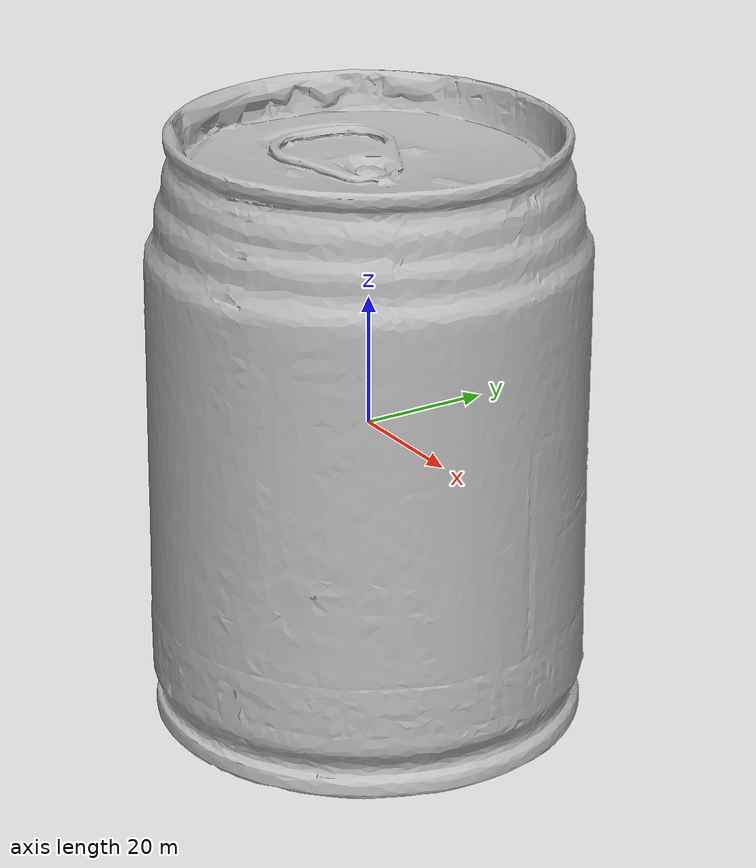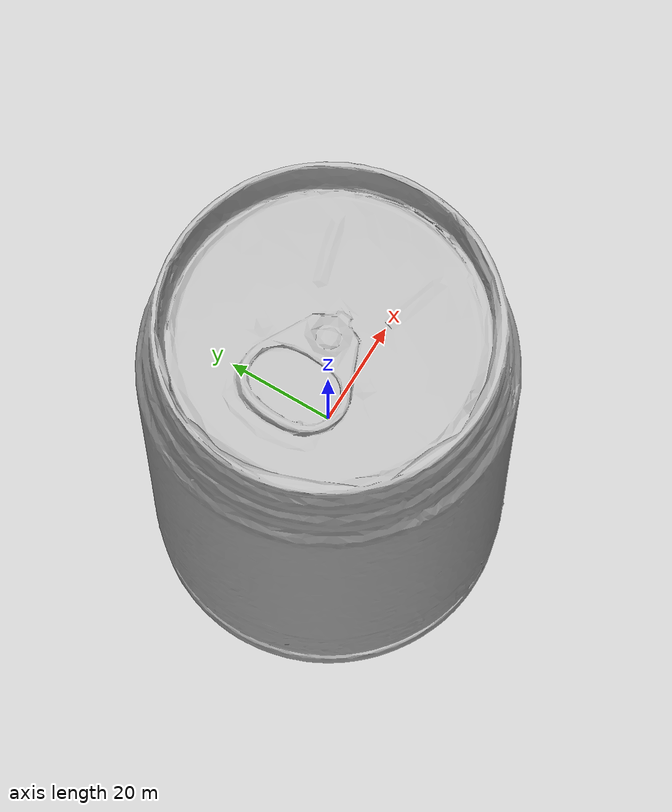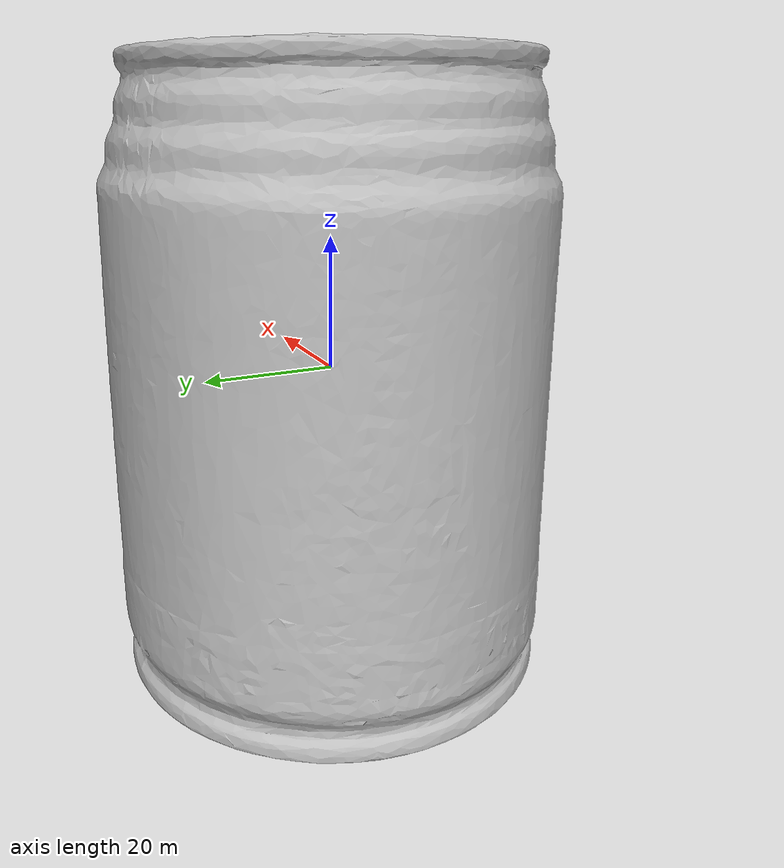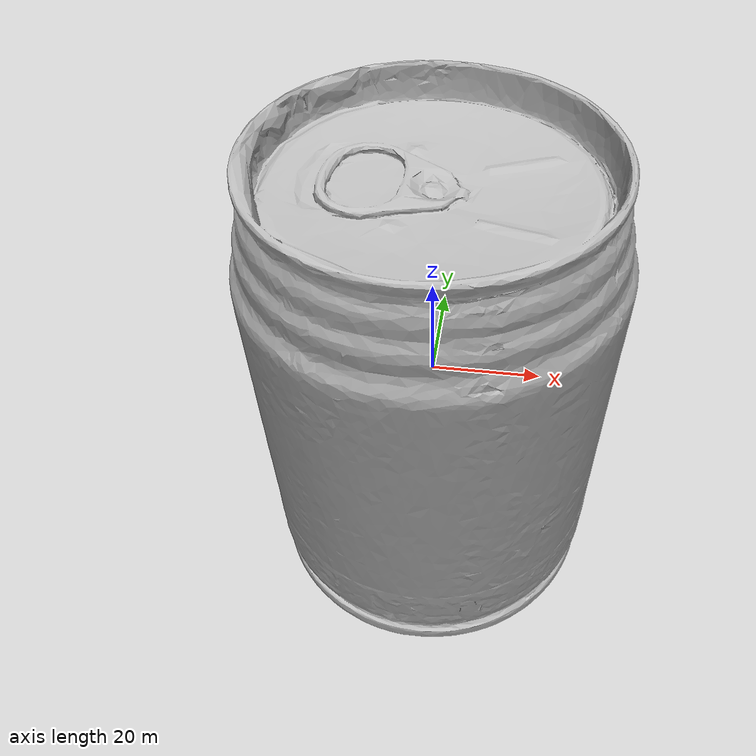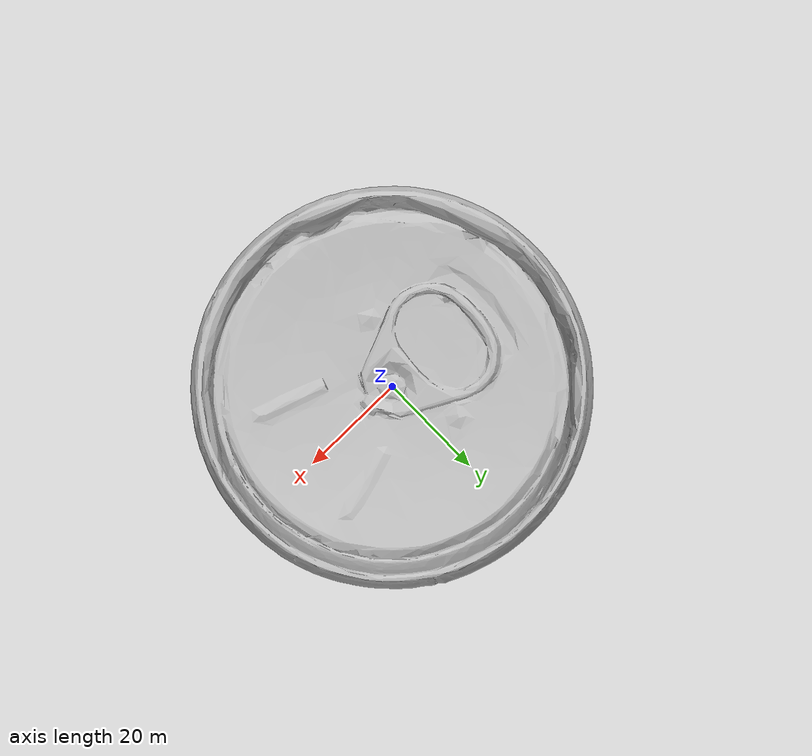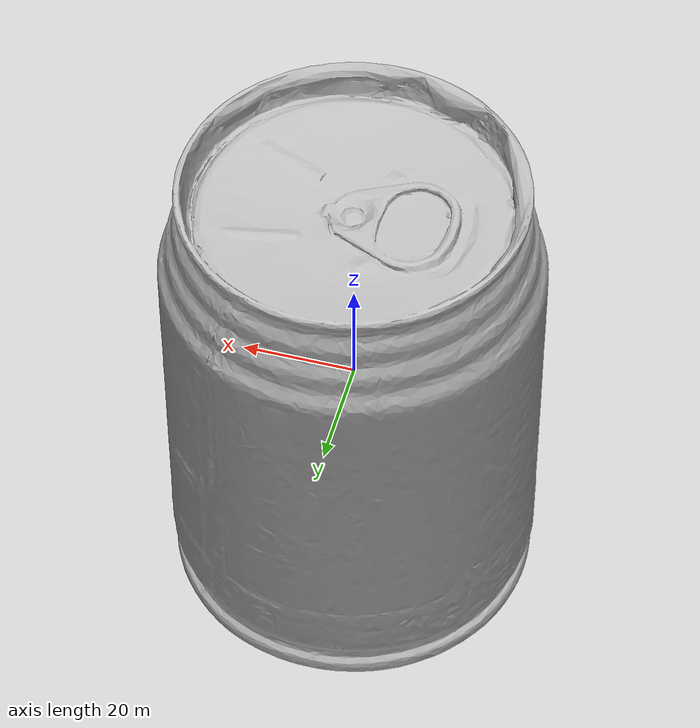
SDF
<sdf version="1.4">
 <world name="default">
  <light name="light1" type="point">
   <pose>0 0 1 0 0 0</pose>
   <diffuse>3 3 3 1</diffuse>
   <specular>3 3 3 1</specular>
  </light>
  <light name="light2" type="point">
   <pose>0 0.5 2 0 0 0</pose>
   <diffuse>1 1 1 1</diffuse>
   <specular>1 1 1 1</specular>
  </light>
  <light name="light3" type="point">
   <pose>0 0.5 2 0 0 0</pose>
   <diffuse>3 3 3 1</diffuse>
   <specular>3 3 3 1</specular>
  </light>
  <scene><ambient>0.7 0.7 0.7</ambient></scene>
  <model name="box1">
   <link name="link_box1">
    <collision name="default">
     <geometry>
      <mesh><uri>model://wooden_puzzle1/collision_meshes/collision.obj</uri><scale>1.0 1.0 1.0</scale></mesh>
     </geometry>
     <surface>
      <friction><ode><mu>0.5</mu><mu2>0.5</mu2></ode></friction>
      <contact><ode><max_vel>0</max_vel><min_depth>0.0001</min_depth><kp>1e8</kp></ode></contact>
     </surface>
    </collision>
    <visual name="default">
     <geometry>
      <mesh><uri>model://wooden_puzzle1/visual_meshes/visual.dae</uri><scale>1.0 1.0 1.0</scale></mesh>
     </geometry>
    </visual>
    <inertial>
     <mass>0.020629532635211945</mass>
     <pose>-0.0001735068071866408 7.972260937094688e-05 -9.191555000143126e-05 -0.07784798349428995 -0.2636160818751574 -0.552872324185161</pose>
     <inertia>
      <ixx>3.8922285e-06</ixx>
      <iyy>3.817302e-06</iyy>
      <izz>3.8628423e-06</izz>
      <ixy>0</ixy>
      <ixz>0</ixz>
      <iyz>0</iyz>
     </inertia>
    </inertial>
   </link>
   <pose>0.27653852105140686 0.24549180269241333 0.016802024096250534 0.010510998071942374 -0.009454376724157438 2.24880841882704</pose>
  </model>
  <model name="box3">
   <link name="link_box3">
    <collision name="default">
     <geometry>
      <mesh><uri>model://wooden_puzzle2/collision_meshes/collision.obj</uri><scale>1.0 1.0 1.0</scale></mesh>
     </geometry>
     <surface>
      <friction><ode><mu>0.5</mu><mu2>0.5</mu2></ode></friction>
      <contact><ode><max_vel>0</max_vel><min_depth>0.0001</min_depth><kp>1e8</kp></ode></contact>
     </surface>
    </collision>
    <visual name="default">
     <geometry>
      <mesh><uri>model://wooden_puzzle2/visual_meshes/visual.dae</uri><scale>1.0 1.0 1.0</scale></mesh>
     </geometry>
    </visual>
    <inertial>
     <mass>0.05583015829324722</mass>
     <pose>2.7402536943554878e-05 4.997663199901581e-05 6.587122334167361e-05 -0.19203199902598803 0.6112853789707493 -0.6338693450254121</pose>
     <inertia>
      <ixx>1.0378231e-05</ixx>
      <iyy>1.06642165e-05</iyy>
      <izz>1.0512509e-05</izz>
      <ixy>0</ixy>
      <ixz>0</ixz>
      <iyz>0</iyz>
     </inertia>
    </inertial>
   </link>
   <pose>-0.07788204401731491 0.26452872157096863 0.01691773161292076 0.020847916405379637 0.0007218865266174984 -2.6664073544298357</pose>
  </model>
  <model name="can1">
   <link name="link_can1">
    <collision name="default">
     <geometry>
      <mesh><uri>model://pepsi/collision_meshes/collision.obj</uri><scale>1.0 1.0 1.0</scale></mesh>
     </geometry>
     <surface>
      <friction><ode><mu>0.5</mu><mu2>0.5</mu2></ode></friction>
      <contact><ode><max_vel>0</max_vel><min_depth>0.0001</min_depth><kp>1e8</kp></ode></contact>
     </surface>
    </collision>
    <visual name="default">
     <geometry><mesh><uri>model://pepsi/visual_meshes/visual.dae</uri><scale>1.0 1.0 1.0</scale></mesh></geometry>
    </visual>
    <inertial>
     <mass>0.49348899722099304</mass>
     <pose>-7.5590331107378e-05 2.9931279641459696e-05 -0.0003384356386959553 -0.0010677622415870868 -0.0021735774955872703 0.5673701275352521</pose>
     <inertia>
      <ixx>0.0009831247</ixx>
      <iyy>0.0009824084</iyy>
      <izz>0.00020924417</izz>
      <ixy>0</ixy>
      <ixz>0</ixz>
      <iyz>0</iyz>
     </inertia>
    </inertial>
   </link>
   <pose>-0.07037603855133057 -0.23314358294010162 0.07449633628129959 -1.9242257582226934e-05 2.0809501065563843e-06 3.024673001363137</pose>
  </model>
  <model name="can2">
   <link name="link_can2">
    <collision name="default">
     <geometry>
      <mesh><uri>model://redbull/collision_meshes/collision.obj</uri><scale>1.0 1.0 1.0</scale></mesh>
     </geometry>
     <surface>
      <friction><ode><mu>0.5</mu><mu2>0.5</mu2></ode></friction>
      <contact><ode><max_vel>0</max_vel><min_depth>0.0001</min_depth><kp>1e8</kp></ode></contact>
     </surface>
    </collision>
    <visual name="default">
     <geometry>
      <mesh><uri>model://redbull/visual_meshes/visual.dae</uri><scale>1.0 1.0 1.0</scale></mesh>
     </geometry>
    </visual>
    <inertial>
     <mass>0.3443465232849121</mass>
     <pose>-2.2127078409539536e-05 -0.00012659528874792159 -0.0006860987632535398 0.0011367237692686564 -0.010800964902263904 0.5859097418646089</pose>
     <inertia>
      <ixx>0.0003237599</ixx>
      <iyy>0.00032403314</iyy>
      <izz>0.00019212745</izz>
      <ixy>0</ixy>
      <ixz>0</ixz>
      <iyz>0</iyz>
     </inertia>
    </inertial>
   </link>
   <pose>0.26691779494285583 -0.17745164036750793 0.04638563469052315 -0.010488890441415577 0.007261113672768859 -1.2036096819906439</pose>
  </model>
  <physics type="ode">
   <max_contacts>50</max_contacts>
   <ode>
    <solver><type>quick</type><iters>75</iters></solver>
    <constraints>
     <contact_max_correcting_vel>0</contact_max_correcting_vel>
     <contact_surface_layer>0</contact_surface_layer>
    </constraints>
   </ode>
  </physics>
 </world>
</sdf>
